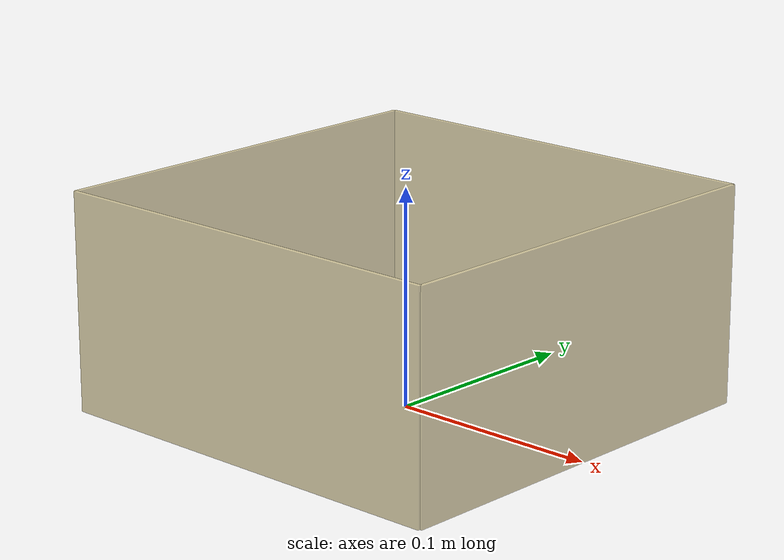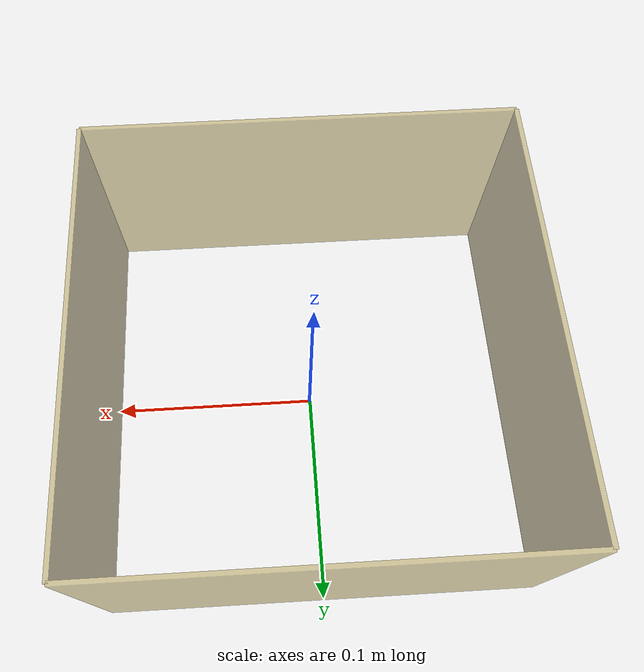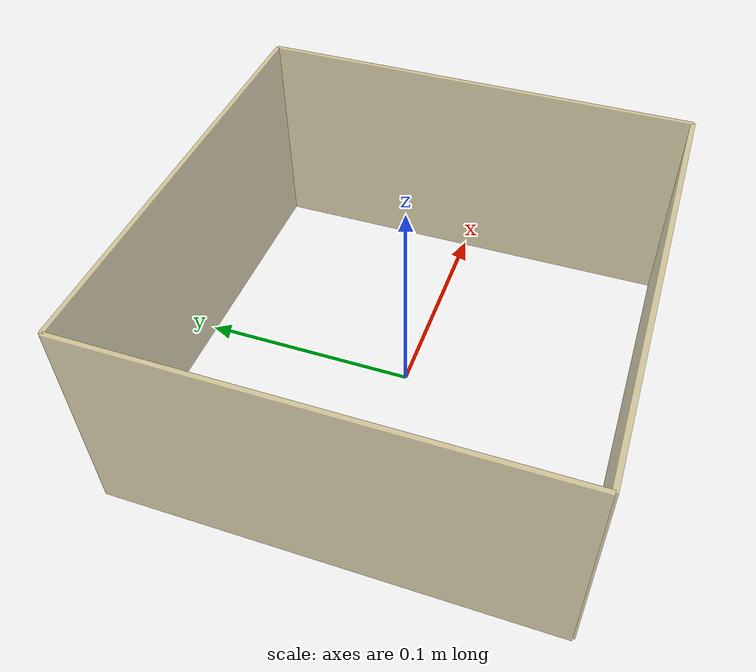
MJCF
<?xml version="1.0"?>
<mujoco model="targetbox">
    <default>
        <default class="wall">
            <geom type="box" material="wall"/>
        </default>
    </default>

    <asset>
        <material name="wall" rgba="0.74 0.66 0.39 0.6"/>
    </asset>

    <worldbody>
        <body name="root">
            <body pos="0.1 0.0 0.05">
                <geom size="0.001 0.1 0.05" class="wall"/>
            </body>
            <body pos="-0.1 0.0 0.05">
                <geom size="0.001 0.1 0.05" class="wall"/>
            </body>
            <body pos="0.0 0.1 0.05">
                <geom size="0.1 0.001 0.05" class="wall"/>
            </body>
            <body pos="0.0 -0.1 0.05">
                <geom size="0.1 0.001 0.05" class="wall"/>
            </body>
        </body>
    </worldbody>
</mujoco>
